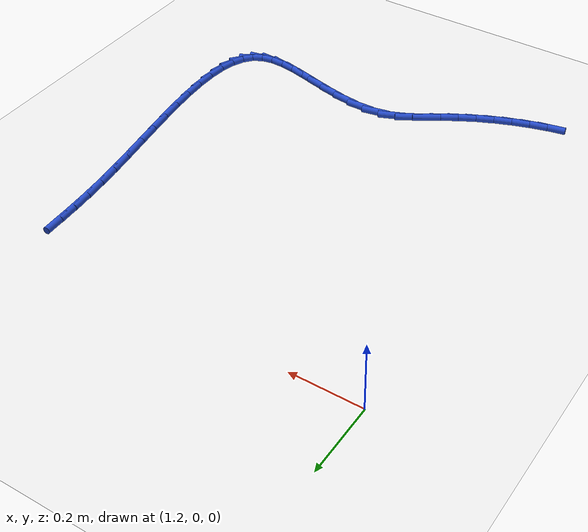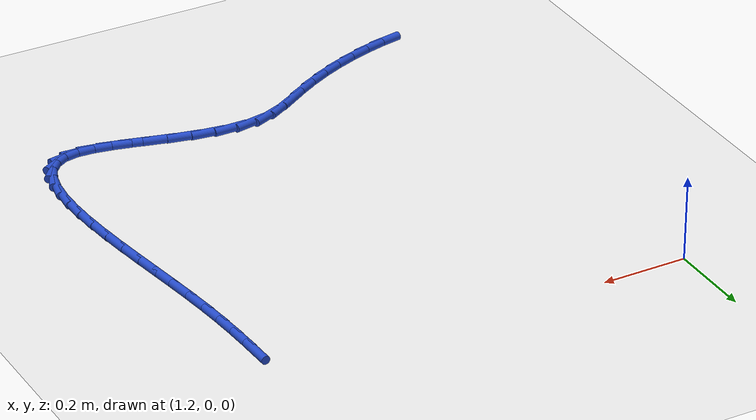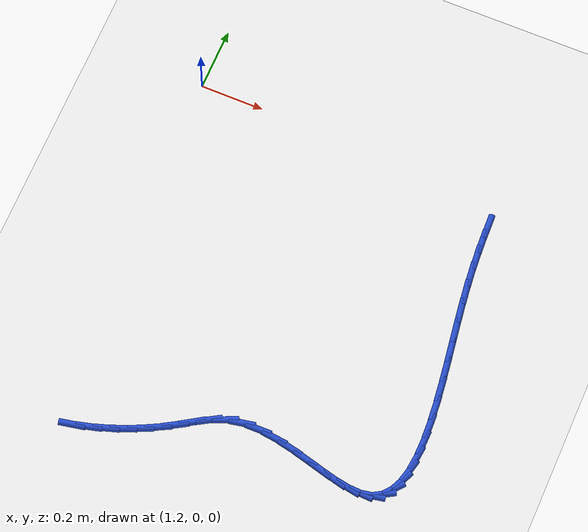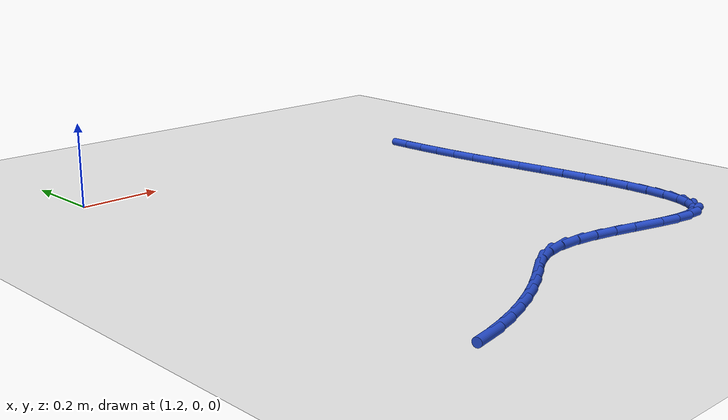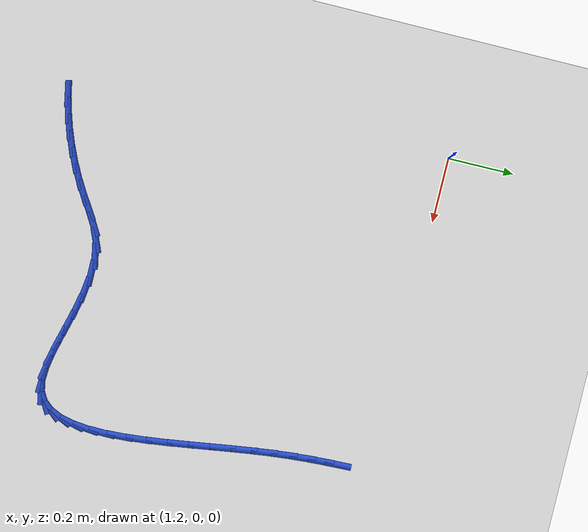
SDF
<sdf version="1.6">
 <world name="default">
  <model name="ground_plane">
   <static>1</static>
   <link name="link">
    <collision name="collision">
     <geometry><plane><normal>0 0 1</normal><size>100 100</size></plane></geometry>
     <surface><friction><ode><mu>100</mu><mu2>50</mu2></ode></friction></surface>
    </collision>
    <visual name="visual">
     <cast_shadows>0</cast_shadows>
     <geometry><plane><normal>0 0 1</normal><size>100 100</size></plane></geometry>
     <material>
      <script><uri>file://media/materials/scripts/gazebo.material</uri><name>Gazebo/WhiteGlow</name></script>
     </material>
    </visual>
   </link>
  </model>
  <model name="line">
   <link name="link_74">
    <pose>2.176597018082858 -0.10144967502343757 0.01 0 1.57 -1.530264704035869</pose>
    <collision name="collision">
     <geometry><cylinder><radius>0.01</radius><length>0.08</length></cylinder></geometry>
    </collision>
    <visual name="visual">
     <material>
      <script><name>Gazebo/Blue</name><uri>file://media/materials/scripts/gazebo.material</uri></script>
     </material>
     <geometry><cylinder><radius>0.01</radius><length>0.08</length></cylinder></geometry>
    </visual>
   </link>
   <link name="link_75">
    <pose>2.178730813885704 -0.15406605340286803 0.01 0 1.57 -1.5095135292723842</pose>
    <collision name="collision">
     <geometry><cylinder><radius>0.01</radius><length>0.08</length></cylinder></geometry>
    </collision>
    <visual name="visual">
     <material>
      <script><name>Gazebo/Blue</name><uri>file://media/materials/scripts/gazebo.material</uri></script>
     </material>
     <geometry><cylinder><radius>0.01</radius><length>0.08</length></cylinder></geometry>
    </visual>
   </link>
   <link name="link_76">
    <pose>2.182080128797833 -0.20865104498977127 0.01 0 1.57 -1.4866142491258754</pose>
    <collision name="collision">
     <geometry><cylinder><radius>0.01</radius><length>0.08</length></cylinder></geometry>
    </collision>
    <visual name="visual">
     <material>
      <script><name>Gazebo/Blue</name><uri>file://media/materials/scripts/gazebo.material</uri></script>
     </material>
     <geometry><cylinder><radius>0.01</radius><length>0.08</length></cylinder></geometry>
    </visual>
   </link>
   <link name="link_77">
    <pose>2.1868712397710963 -0.2654302093594829 0.01 0 1.57 -1.462131412397327</pose>
    <collision name="collision">
     <geometry><cylinder><radius>0.01</radius><length>0.08</length></cylinder></geometry>
    </collision>
    <visual name="visual">
     <material>
      <script><name>Gazebo/Blue</name><uri>file://media/materials/scripts/gazebo.material</uri></script>
     </material>
     <geometry><cylinder><radius>0.01</radius><length>0.08</length></cylinder></geometry>
    </visual>
   </link>
   <link name="link_78">
    <pose>2.1933293793723214 -0.32462779148330123 0.01 0 1.57 -1.4397405945508561</pose>
    <collision name="collision">
     <geometry><cylinder><radius>0.01</radius><length>0.08</length></cylinder></geometry>
    </collision>
    <visual name="visual">
     <material>
      <script><name>Gazebo/Blue</name><uri>file://media/materials/scripts/gazebo.material</uri></script>
     </material>
     <geometry><cylinder><radius>0.01</radius><length>0.08</length></cylinder></geometry>
    </visual>
   </link>
   <link name="link_79">
    <pose>2.2014410019689663 -0.3861674778433088 0.01 0 1.57 -1.4259145912743867</pose>
    <collision name="collision">
     <geometry><cylinder><radius>0.01</radius><length>0.08</length></cylinder></geometry>
    </collision>
    <visual name="visual">
     <material>
      <script><name>Gazebo/Blue</name><uri>file://media/materials/scripts/gazebo.material</uri></script>
     </material>
     <geometry><cylinder><radius>0.01</radius><length>0.08</length></cylinder></geometry>
    </visual>
   </link>
   <link name="link_80">
    <pose>2.210651023016044 -0.4492913009104366 0.01 0 1.57 -1.4203709477335469</pose>
    <collision name="collision">
     <geometry><cylinder><radius>0.01</radius><length>0.08</length></cylinder></geometry>
    </collision>
    <visual name="visual">
     <material>
      <script><name>Gazebo/Blue</name><uri>file://media/materials/scripts/gazebo.material</uri></script>
     </material>
     <geometry><cylinder><radius>0.01</radius><length>0.08</length></cylinder></geometry>
    </visual>
   </link>
   <link name="link_81">
    <pose>2.2203297017563908 -0.5131473207644924 0.01 0 1.57 -1.4225638876360442</pose>
    <collision name="collision">
     <geometry><cylinder><radius>0.01</radius><length>0.08</length></cylinder></geometry>
    </collision>
    <visual name="visual">
     <material>
      <script><name>Gazebo/Blue</name><uri>file://media/materials/scripts/gazebo.material</uri></script>
     </material>
     <geometry><cylinder><radius>0.01</radius><length>0.08</length></cylinder></geometry>
    </visual>
   </link>
   <link name="link_82">
    <pose>2.22984729743284 -0.5768835974852806 0.01 0 1.57 -1.4326423244609043</pose>
    <collision name="collision">
     <geometry><cylinder><radius>0.01</radius><length>0.08</length></cylinder></geometry>
    </collision>
    <visual name="visual">
     <material>
      <script><name>Gazebo/Blue</name><uri>file://media/materials/scripts/gazebo.material</uri></script>
     </material>
     <geometry><cylinder><radius>0.01</radius><length>0.08</length></cylinder></geometry>
    </visual>
   </link>
   <link name="link_83">
    <pose>2.238574069288225 -0.6396481911526055 0.01 0 1.57 -1.4514759328696047</pose>
    <collision name="collision">
     <geometry><cylinder><radius>0.01</radius><length>0.08</length></cylinder></geometry>
    </collision>
    <visual name="visual">
     <material>
      <script><name>Gazebo/Blue</name><uri>file://media/materials/scripts/gazebo.material</uri></script>
     </material>
     <geometry><cylinder><radius>0.01</radius><length>0.08</length></cylinder></geometry>
    </visual>
   </link>
   <link name="link_84">
    <pose>2.2458802765653814 -0.7005891618462748 0.01 0 1.57 -1.4808335976351754</pose>
    <collision name="collision">
     <geometry><cylinder><radius>0.01</radius><length>0.08</length></cylinder></geometry>
    </collision>
    <visual name="visual">
     <material>
      <script><name>Gazebo/Blue</name><uri>file://media/materials/scripts/gazebo.material</uri></script>
     </material>
     <geometry><cylinder><radius>0.01</radius><length>0.08</length></cylinder></geometry>
    </visual>
   </link>
   <link name="link_85">
    <pose>2.2511361785071413 -0.7588545696460921 0.01 0 1.57 -1.5237730254775845</pose>
    <collision name="collision">
     <geometry><cylinder><radius>0.01</radius><length>0.08</length></cylinder></geometry>
    </collision>
    <visual name="visual">
     <material>
      <script><name>Gazebo/Blue</name><uri>file://media/materials/scripts/gazebo.material</uri></script>
     </material>
     <geometry><cylinder><radius>0.01</radius><length>0.08</length></cylinder></geometry>
    </visual>
   </link>
   <link name="link_86">
    <pose>2.2537120343563406 -0.8135924746318647 0.01 0 1.57 1.5562232240689022</pose>
    <collision name="collision">
     <geometry><cylinder><radius>0.01</radius><length>0.08</length></cylinder></geometry>
    </collision>
    <visual name="visual">
     <material>
      <script><name>Gazebo/Blue</name><uri>file://media/materials/scripts/gazebo.material</uri></script>
     </material>
     <geometry><cylinder><radius>0.01</radius><length>0.08</length></cylinder></geometry>
    </visual>
   </link>
   <link name="link_87">
    <pose>2.2529781033558125 -0.863950936883397 0.01 0 1.57 1.4676020244015013</pose>
    <collision name="collision">
     <geometry><cylinder><radius>0.01</radius><length>0.08</length></cylinder></geometry>
    </collision>
    <visual name="visual">
     <material>
      <script><name>Gazebo/Blue</name><uri>file://media/materials/scripts/gazebo.material</uri></script>
     </material>
     <geometry><cylinder><radius>0.01</radius><length>0.08</length></cylinder></geometry>
    </visual>
   </link>
   <link name="link_88">
    <pose>2.24830464474839 -0.9090780164804935 0.01 0 1.57 1.3383480032862543</pose>
    <collision name="collision">
     <geometry><cylinder><radius>0.01</radius><length>0.08</length></cylinder></geometry>
    </collision>
    <visual name="visual">
     <material>
      <script><name>Gazebo/Blue</name><uri>file://media/materials/scripts/gazebo.material</uri></script>
     </material>
     <geometry><cylinder><radius>0.01</radius><length>0.08</length></cylinder></geometry>
    </visual>
   </link>
   <link name="link_89">
    <pose>2.239061917776909 -0.948121773502962 0.01 0 1.57 1.1481259527130303</pose>
    <collision name="collision">
     <geometry><cylinder><radius>0.01</radius><length>0.08</length></cylinder></geometry>
    </collision>
    <visual name="visual">
     <material>
      <script><name>Gazebo/Blue</name><uri>file://media/materials/scripts/gazebo.material</uri></script>
     </material>
     <geometry><cylinder><radius>0.01</radius><length>0.08</length></cylinder></geometry>
    </visual>
   </link>
   <link name="link_90">
    <pose>2.2246201816842026 -0.9802302680306063 0.01 0 1.57 0.8759915055832705</pose>
    <collision name="collision">
     <geometry><cylinder><radius>0.01</radius><length>0.08</length></cylinder></geometry>
    </collision>
    <visual name="visual">
     <material>
      <script><name>Gazebo/Blue</name><uri>file://media/materials/scripts/gazebo.material</uri></script>
     </material>
     <geometry><cylinder><radius>0.01</radius><length>0.08</length></cylinder></geometry>
    </visual>
   </link>
   <link name="link_91">
    <pose>2.2043496957131046 -1.0045515601432318 0.01 0 1.57 0.5305898991282108</pose>
    <collision name="collision">
     <geometry><cylinder><radius>0.01</radius><length>0.08</length></cylinder></geometry>
    </collision>
    <visual name="visual">
     <material>
      <script><name>Gazebo/Blue</name><uri>file://media/materials/scripts/gazebo.material</uri></script>
     </material>
     <geometry><cylinder><radius>0.01</radius><length>0.08</length></cylinder></geometry>
    </visual>
   </link>
   <link name="link_92">
    <pose>2.177620719106449 -1.020233709920645 0.01 0 1.57 0.1865740094641733</pose>
    <collision name="collision">
     <geometry><cylinder><radius>0.01</radius><length>0.08</length></cylinder></geometry>
    </collision>
    <visual name="visual">
     <material>
      <script><name>Gazebo/Blue</name><uri>file://media/materials/scripts/gazebo.material</uri></script>
     </material>
     <geometry><cylinder><radius>0.01</radius><length>0.08</length></cylinder></geometry>
    </visual>
   </link>
   <link name="link_93">
    <pose>2.1439092217255595 -1.0265974109282925 0.01 0 1.57 -0.04634462296118049</pose>
    <collision name="collision">
     <geometry><cylinder><radius>0.01</radius><length>0.08</length></cylinder></geometry>
    </collision>
    <visual name="visual">
     <material>
      <script><name>Gazebo/Blue</name><uri>file://media/materials/scripts/gazebo.material</uri></script>
     </material>
     <geometry><cylinder><radius>0.01</radius><length>0.08</length></cylinder></geometry>
    </visual>
   </link>
   <link name="link_94">
    <pose>2.1037767298480845 -1.0247361529813492 0.01 0 1.57 -0.17354858583661167</pose>
    <collision name="collision">
     <geometry><cylinder><radius>0.01</radius><length>0.08</length></cylinder></geometry>
    </collision>
    <visual name="visual">
     <material>
      <script><name>Gazebo/Blue</name><uri>file://media/materials/scripts/gazebo.material</uri></script>
     </material>
     <geometry><cylinder><radius>0.01</radius><length>0.08</length></cylinder></geometry>
    </visual>
   </link>
   <link name="link_95">
    <pose>2.058422578652173 -1.0167850163732324 0.01 0 1.57 -0.23639206927481432</pose>
    <collision name="collision">
     <geometry><cylinder><radius>0.01</radius><length>0.08</length></cylinder></geometry>
    </collision>
    <visual name="visual">
     <material>
      <script><name>Gazebo/Blue</name><uri>file://media/materials/scripts/gazebo.material</uri></script>
     </material>
     <geometry><cylinder><radius>0.01</radius><length>0.08</length></cylinder></geometry>
    </visual>
   </link>
   <link name="link_96">
    <pose>2.009054246264691 -1.0048923794523759 0.01 0 1.57 -0.2565256449569376</pose>
    <collision name="collision">
     <geometry><cylinder><radius>0.01</radius><length>0.08</length></cylinder></geometry>
    </collision>
    <visual name="visual">
     <material>
      <script><name>Gazebo/Blue</name><uri>file://media/materials/scripts/gazebo.material</uri></script>
     </material>
     <geometry><cylinder><radius>0.01</radius><length>0.08</length></cylinder></geometry>
    </visual>
   </link>
   <link name="link_97">
    <pose>1.9568792108125022 -0.9912066205672128 0.01 0 1.57 -0.2429988239754967</pose>
    <collision name="collision">
     <geometry><cylinder><radius>0.01</radius><length>0.08</length></cylinder></geometry>
    </collision>
    <visual name="visual">
     <material>
      <script><name>Gazebo/Blue</name><uri>file://media/materials/scripts/gazebo.material</uri></script>
     </material>
     <geometry><cylinder><radius>0.01</radius><length>0.08</length></cylinder></geometry>
    </visual>
   </link>
   <link name="link_98">
    <pose>1.903104950422473 -0.9778761180661775 0.01 0 1.57 -0.19728312391071606</pose>
    <collision name="collision">
     <geometry><cylinder><radius>0.01</radius><length>0.08</length></cylinder></geometry>
    </collision>
    <visual name="visual">
     <material>
      <script><name>Gazebo/Blue</name><uri>file://media/materials/scripts/gazebo.material</uri></script>
     </material>
     <geometry><cylinder><radius>0.01</radius><length>0.08</length></cylinder></geometry>
    </visual>
   </link>
   <link name="link_99">
    <pose>1.8489389432214673 -0.9670492502977026 0.01 0 1.57 -0.11522904068536884</pose>
    <collision name="collision">
     <geometry><cylinder><radius>0.01</radius><length>0.08</length></cylinder></geometry>
    </collision>
    <visual name="visual">
     <material>
      <script><name>Gazebo/Blue</name><uri>file://media/materials/scripts/gazebo.material</uri></script>
     </material>
     <geometry><cylinder><radius>0.01</radius><length>0.08</length></cylinder></geometry>
    </visual>
   </link>
   <link name="link_100">
    <pose>1.7955886673363508 -0.9608743956102224 0.01 0 1.57 0.012186665201038407</pose>
    <collision name="collision">
     <geometry><cylinder><radius>0.01</radius><length>0.08</length></cylinder></geometry>
    </collision>
    <visual name="visual">
     <material>
      <script><name>Gazebo/Blue</name><uri>file://media/materials/scripts/gazebo.material</uri></script>
     </material>
     <geometry><cylinder><radius>0.01</radius><length>0.08</length></cylinder></geometry>
    </visual>
   </link>
   <link name="link_101">
    <pose>1.744261600893989 -0.96149993235217 0.01 0 1.57 0.19641956471527242</pose>
    <collision name="collision">
     <geometry><cylinder><radius>0.01</radius><length>0.08</length></cylinder></geometry>
    </collision>
    <visual name="visual">
     <material>
      <script><name>Gazebo/Blue</name><uri>file://media/materials/scripts/gazebo.material</uri></script>
     </material>
     <geometry><cylinder><radius>0.01</radius><length>0.08</length></cylinder></geometry>
    </visual>
   </link>
   <link name="link_102">
    <pose>1.6961635005358837 -0.9710707406838857 0.01 0 1.57 0.40582847989232895</pose>
    <collision name="collision">
     <geometry><cylinder><radius>0.01</radius><length>0.08</length></cylinder></geometry>
    </collision>
    <visual name="visual">
     <material>
      <script><name>Gazebo/Blue</name><uri>file://media/materials/scripts/gazebo.material</uri></script>
     </material>
     <geometry><cylinder><radius>0.01</radius><length>0.08</length></cylinder></geometry>
    </visual>
   </link>
   <link name="link_103">
    <pose>1.6517284570015354 -0.9901636174523571 0.01 0 1.57 0.5363170622183454</pose>
    <collision name="collision">
     <geometry><cylinder><radius>0.01</radius><length>0.08</length></cylinder></geometry>
    </collision>
    <visual name="visual">
     <material>
      <script><name>Gazebo/Blue</name><uri>file://media/materials/scripts/gazebo.material</uri></script>
     </material>
     <geometry><cylinder><radius>0.01</radius><length>0.08</length></cylinder></geometry>
    </visual>
   </link>
   <link name="link_104">
    <pose>1.609405603264991 -1.0153217756159512 0.01 0 1.57 0.5726471927216429</pose>
    <collision name="collision">
     <geometry><cylinder><radius>0.01</radius><length>0.08</length></cylinder></geometry>
    </collision>
    <visual name="visual">
     <material>
      <script><name>Gazebo/Blue</name><uri>file://media/materials/scripts/gazebo.material</uri></script>
     </material>
     <geometry><cylinder><radius>0.01</radius><length>0.08</length></cylinder></geometry>
    </visual>
   </link>
   <link name="link_105">
    <pose>1.5673292956515879 -1.0424487782418246 0.01 0 1.57 0.5327822961572068</pose>
    <collision name="collision">
     <geometry><cylinder><radius>0.01</radius><length>0.08</length></cylinder></geometry>
    </collision>
    <visual name="visual">
     <material>
      <script><name>Gazebo/Blue</name><uri>file://media/materials/scripts/gazebo.material</uri></script>
     </material>
     <geometry><cylinder><radius>0.01</radius><length>0.08</length></cylinder></geometry>
    </visual>
   </link>
   <link name="link_106">
    <pose>1.5239390385229683 -1.068034302424024 0.01 0 1.57 0.4769244595272142</pose>
    <collision name="collision">
     <geometry><cylinder><radius>0.01</radius><length>0.08</length></cylinder></geometry>
    </collision>
    <visual name="visual">
     <material>
      <script><name>Gazebo/Blue</name><uri>file://media/materials/scripts/gazebo.material</uri></script>
     </material>
     <geometry><cylinder><radius>0.01</radius><length>0.08</length></cylinder></geometry>
    </visual>
   </link>
   <link name="link_107">
    <pose>1.479057585876323 -1.0912249062377797 0.01 0 1.57 0.4214755547470069</pose>
    <collision name="collision">
     <geometry><cylinder><radius>0.01</radius><length>0.08</length></cylinder></geometry>
    </collision>
    <visual name="visual">
     <material>
      <script><name>Gazebo/Blue</name><uri>file://media/materials/scripts/gazebo.material</uri></script>
     </material>
     <geometry><cylinder><radius>0.01</radius><length>0.08</length></cylinder></geometry>
    </visual>
   </link>
   <link name="link_108">
    <pose>1.4328994454999244 -1.1119196100544029 0.01 0 1.57 0.36599667500520844</pose>
    <collision name="collision">
     <geometry><cylinder><radius>0.01</radius><length>0.08</length></cylinder></geometry>
    </collision>
    <visual name="visual">
     <material>
      <script><name>Gazebo/Blue</name><uri>file://media/materials/scripts/gazebo.material</uri></script>
     </material>
     <geometry><cylinder><radius>0.01</radius><length>0.08</length></cylinder></geometry>
    </visual>
   </link>
   <link name="link_109">
    <pose>1.3856791502455892 -1.1300174823860865 0.01 0 1.57 0.31004968476817385</pose>
    <collision name="collision">
     <geometry><cylinder><radius>0.01</radius><length>0.08</length></cylinder></geometry>
    </collision>
    <visual name="visual">
     <material>
      <script><name>Gazebo/Blue</name><uri>file://media/materials/scripts/gazebo.material</uri></script>
     </material>
     <geometry><cylinder><radius>0.01</radius><length>0.08</length></cylinder></geometry>
    </visual>
   </link>
   <link name="link_110">
    <pose>1.337611232965131 -1.1454175917450236 0.01 0 1.57 0.25319741935022544</pose>
    <collision name="collision">
     <geometry><cylinder><radius>0.01</radius><length>0.08</length></cylinder></geometry>
    </collision>
    <visual name="visual">
     <material>
      <script><name>Gazebo/Blue</name><uri>file://media/materials/scripts/gazebo.material</uri></script>
     </material>
     <geometry><cylinder><radius>0.01</radius><length>0.08</length></cylinder></geometry>
    </visual>
   </link>
   <link name="link_111">
    <pose>1.2889102265103682 -1.1580190066434073 0.01 0 1.57 0.19500379403436202</pose>
    <collision name="collision">
     <geometry><cylinder><radius>0.01</radius><length>0.08</length></cylinder></geometry>
    </collision>
    <visual name="visual">
     <material>
      <script><name>Gazebo/Blue</name><uri>file://media/materials/scripts/gazebo.material</uri></script>
     </material>
     <geometry><cylinder><radius>0.01</radius><length>0.08</length></cylinder></geometry>
    </visual>
   </link>
  </model>
 </world>
</sdf>
